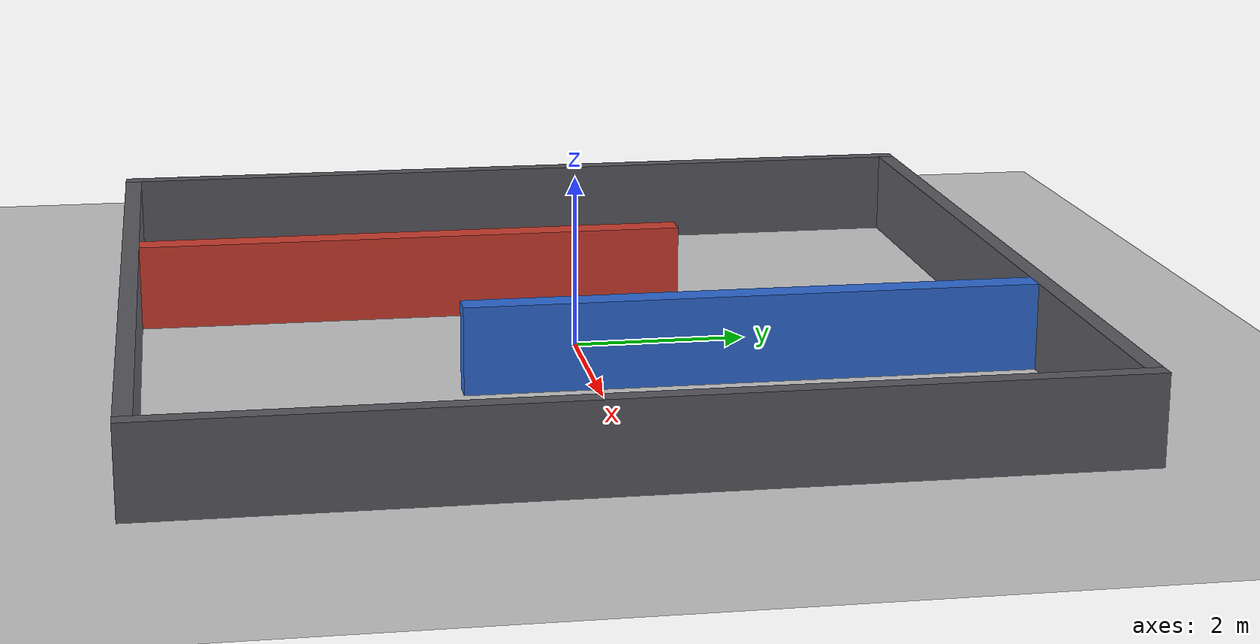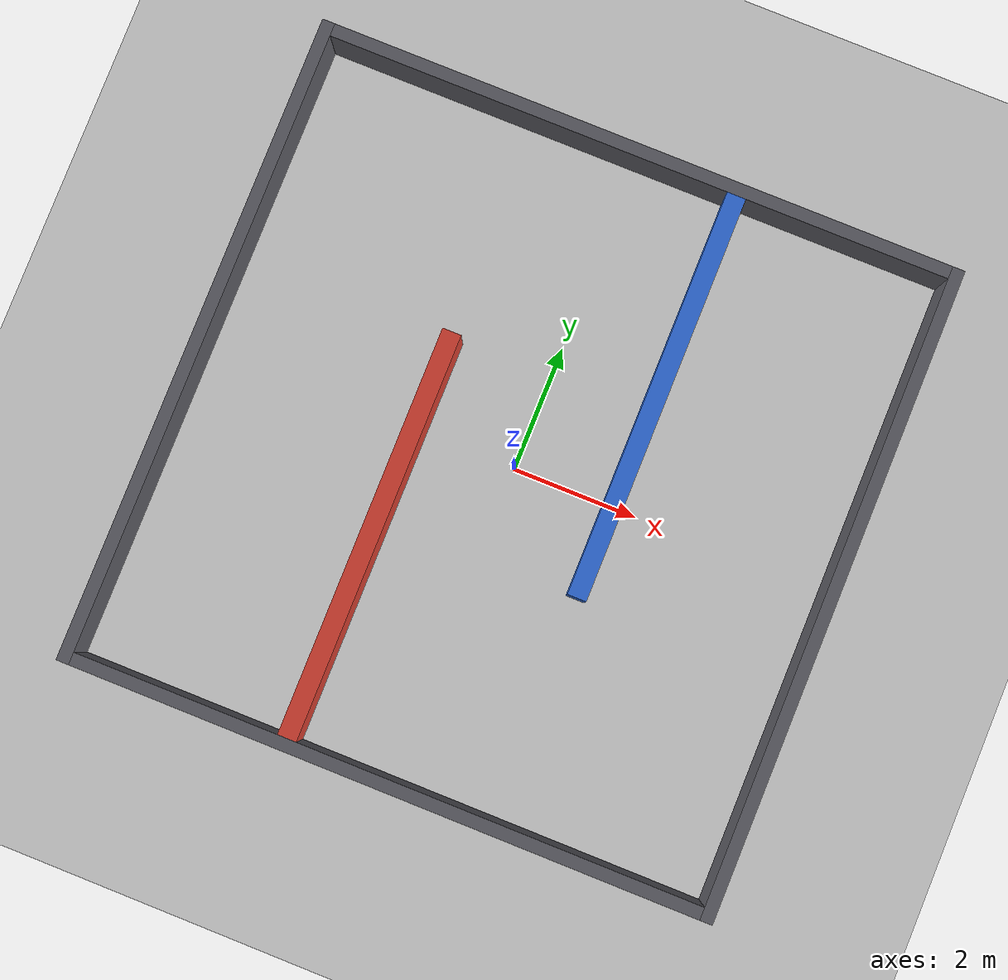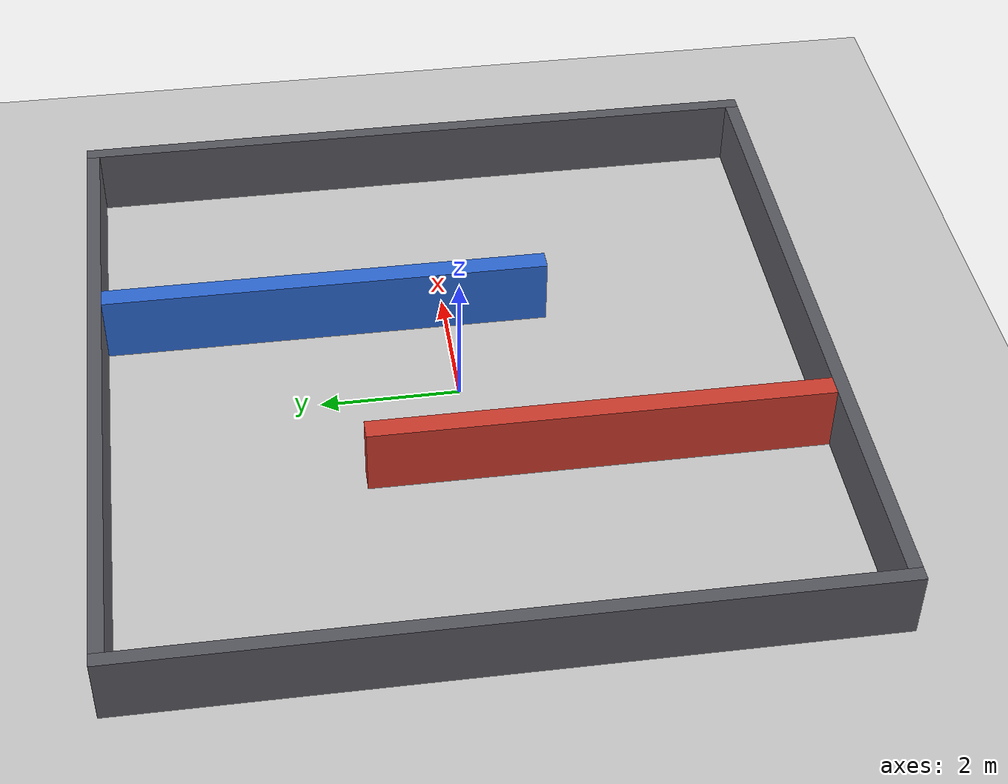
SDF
<?xml version="1.0"?>
<sdf version="1.7">
  <world name="course_challenge">
    <!-- 独立演示世界：不修改原 course_obstacles.world 和已保存的课程地图。 -->
    <include><uri>model://sun</uri></include>
    <include><uri>model://ground_plane</uri></include>

    <physics name="default_physics" type="ode">
      <real_time_update_rate>1000</real_time_update_rate>
      <max_step_size>0.001</max_step_size>
    </physics>
    <plugin name="gazebo_ros_state" filename="libgazebo_ros_state.so">
      <ros><namespace>/gazebo</namespace></ros>
      <update_rate>20</update_rate>
    </plugin>
    <gui fullscreen="0">
      <camera name="challenge_camera"><pose>-7 -9 8 0 0.55 0.75</pose></camera>
    </gui>

    <!-- 四面墙围成 10 m × 10 m 的可扫描区域。 -->
    <model name="challenge_boundary_west">
      <static>true</static><pose>-5.1 0 0.5 0 0 0</pose>
      <link name="link">
        <collision name="collision"><geometry><box><size>0.2 10.4 1.0</size></box></geometry></collision>
        <visual name="visual"><geometry><box><size>0.2 10.4 1.0</size></box></geometry>
          <material><ambient>0.35 0.35 0.38 1</ambient><diffuse>0.35 0.35 0.38 1</diffuse></material>
        </visual>
      </link>
    </model>
    <model name="challenge_boundary_east">
      <static>true</static><pose>5.1 0 0.5 0 0 0</pose>
      <link name="link">
        <collision name="collision"><geometry><box><size>0.2 10.4 1.0</size></box></geometry></collision>
        <visual name="visual"><geometry><box><size>0.2 10.4 1.0</size></box></geometry>
          <material><ambient>0.35 0.35 0.38 1</ambient><diffuse>0.35 0.35 0.38 1</diffuse></material>
        </visual>
      </link>
    </model>
    <model name="challenge_boundary_south">
      <static>true</static><pose>0 -5.1 0.5 0 0 0</pose>
      <link name="link">
        <collision name="collision"><geometry><box><size>10.0 0.2 1.0</size></box></geometry></collision>
        <visual name="visual"><geometry><box><size>10.0 0.2 1.0</size></box></geometry>
          <material><ambient>0.35 0.35 0.38 1</ambient><diffuse>0.35 0.35 0.38 1</diffuse></material>
        </visual>
      </link>
    </model>
    <model name="challenge_boundary_north">
      <static>true</static><pose>0 5.1 0.5 0 0 0</pose>
      <link name="link">
        <collision name="collision"><geometry><box><size>10.0 0.2 1.0</size></box></geometry></collision>
        <visual name="visual"><geometry><box><size>10.0 0.2 1.0</size></box></geometry>
          <material><ambient>0.35 0.35 0.38 1</ambient><diffuse>0.35 0.35 0.38 1</diffuse></material>
        </visual>
      </link>
    </model>

    <!-- 第一堵隔墙接到南边界，只能从北侧绕过去。 -->
    <model name="challenge_wall_south">
      <static>true</static><pose>-1.6 -1.75 0.5 0 0 0</pose>
      <link name="link">
        <collision name="collision"><geometry><box><size>0.3 6.5 1.0</size></box></geometry></collision>
        <visual name="visual"><geometry><box><size>0.3 6.5 1.0</size></box></geometry>
          <material><ambient>0.82 0.24 0.18 1</ambient><diffuse>0.82 0.24 0.18 1</diffuse></material>
        </visual>
      </link>
    </model>
    <!-- 第二堵隔墙接到北边界，只能从南侧绕过去。 -->
    <model name="challenge_wall_north">
      <static>true</static><pose>1.6 1.75 0.5 0 0 0</pose>
      <link name="link">
        <collision name="collision"><geometry><box><size>0.3 6.5 1.0</size></box></geometry></collision>
        <visual name="visual"><geometry><box><size>0.3 6.5 1.0</size></box></geometry>
          <material><ambient>0.18 0.42 0.85 1</ambient><diffuse>0.18 0.42 0.85 1</diffuse></material>
        </visual>
      </link>
    </model>
  </world>
</sdf>
